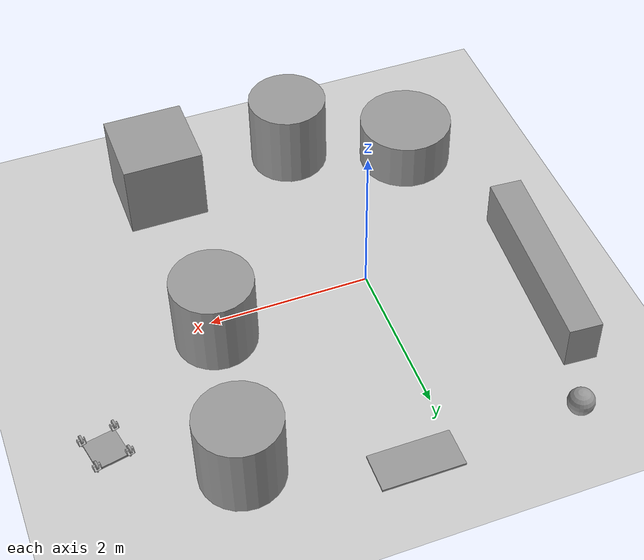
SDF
<sdf version="1.7">
 <world name="default">
  <light name="sun" type="directional">
   <pose>0 0 10 0 -0 0</pose>
   <diffuse>0.8 0.8 0.8 1</diffuse>
   <specular>0.2 0.2 0.2 1</specular>
   <attenuation>
    <range>1000</range>
    <constant>0.9</constant>
    <linear>0.01</linear>
    <quadratic>0.001</quadratic>
   </attenuation>
   <direction>-0.5 0.1 -0.9</direction>
   <spot><inner_angle>0</inner_angle><outer_angle>0</outer_angle><falloff>0</falloff></spot>
  </light>
  <model name="ground_plane">
   <static>1</static>
   <link name="link">
    <collision name="collision">
     <geometry><plane><normal>0 0 1</normal><size>100 100</size></plane></geometry>
     <surface><friction><ode><mu>100</mu><mu2>50</mu2></ode></friction></surface>
    </collision>
    <visual name="visual">
     <cast_shadows>0</cast_shadows>
     <geometry><plane><normal>0 0 1</normal><size>100 100</size></plane></geometry>
     <material>
      <script><uri>file://media/materials/scripts/gazebo.material</uri><name>Gazebo/Grey</name></script>
     </material>
    </visual>
   </link>
  </model>
  <gravity>0 0 -9.8</gravity>
  <magnetic_field>6e-06 2.3e-05 -4.2e-05</magnetic_field>
  <atmosphere type="adiabatic"/>
  <physics type="ode">
   <max_step_size>0.001</max_step_size>
   <real_time_factor>1</real_time_factor>
   <real_time_update_rate>1000</real_time_update_rate>
  </physics>
  <scene><ambient>0.4 0.4 0.4 1</ambient><background>0.7 0.7 0.7 1</background><shadows>1</shadows></scene>
  <spherical_coordinates>
   <surface_model>EARTH_WGS84</surface_model>
   <latitude_deg>0</latitude_deg>
   <longitude_deg>0</longitude_deg>
   <elevation>0</elevation>
   <heading_deg>0</heading_deg>
  </spherical_coordinates>
  <model name="test_rover_fourwheel_gazebo">
   <link name="base_footprint">
    <inertial>
     <pose>0.082134 -0.230131 0.072818 0 -0 0</pose>
     <mass>100.059</mass>
     <inertia>
      <ixx>3.01156</ixx>
      <ixy>0.999999</ixy>
      <ixz>-1.00159</ixz>
      <iyy>3.00764</iyy>
      <iyz>-0.998406</iyz>
      <izz>5.01865</izz>
     </inertia>
    </inertial>
    <collision name="base_footprint_fixed_joint_lump__chassis_link_collision">
     <pose>0.082134 -0.230131 0.02 0 -0 3.14</pose>
     <geometry>
      <mesh>
       <scale>1 1 1</scale>
       <uri>/home/rokata/catkin_ws_new/src/test_controllers/ros_controllers-noetic-devel/swerve_steering_controller/test/meshes/wheel.STL</uri>
      </mesh>
     </geometry>
    </collision>
    <collision name="base_footprint_fixed_joint_lump__camera_link_collision_1">
     <pose>0.082372 -0.080131 0.07 0 -0 1.57</pose>
     <geometry><box><size>0.01 0.01 0.01</size></box></geometry>
    </collision>
    <visual name="base_footprint_fixed_joint_lump__chassis_link_visual">
     <pose>0.082134 -0.230131 0.072818 0 -0 3.14</pose>
     <geometry><box><size>0.4 0.4 0.03</size></box></geometry>
     <material>
      <script><name>Gazebo/Grey</name><uri>file://media/materials/scripts/gazebo.material</uri></script>
     </material>
    </visual>
    <visual name="base_footprint_fixed_joint_lump__camera_link_visual_1">
     <pose>0.082372 -0.080131 0.07 0 -0 1.57</pose>
     <geometry><box><size>0.01 0.01 0.01</size></box></geometry>
    </visual>
    <sensor name="camera1" type="camera">
     <update_rate>30</update_rate>
     <camera name="head">
      <horizontal_fov>1.39626</horizontal_fov>
      <image><width>800</width><height>800</height><format>R8G8B8</format></image>
      <clip><near>0.02</near><far>300</far></clip>
      <noise><type>gaussian</type><mean>0</mean><stddev>0.007</stddev></noise>
     </camera>
     <plugin name="camera_controller" filename="libgazebo_ros_camera.so">
      <alwaysOn>1</alwaysOn>
      <updateRate>30.0</updateRate>
      <cameraName>camera1</cameraName>
      <imageTopicName>image_raw</imageTopicName>
      <cameraInfoTopicName>camera_info</cameraInfoTopicName>
      <frameName>camera_link</frameName>
      <hackBaseline>0.07</hackBaseline>
      <distortionK1>0.0</distortionK1>
      <distortionK2>0.0</distortionK2>
      <distortionK3>0.0</distortionK3>
      <distortionT1>0.0</distortionT1>
      <distortionT2>0.0</distortionT2>
      <robotNamespace>/</robotNamespace>
     </plugin>
     <pose>0.082373 -0.080131 0.07 0 -0 1.57</pose>
    </sensor>
   </link>
   <joint name="steer_joint_1" type="revolute">
    <pose relative_to="base_footprint">0.282452 -0.03045 0.1 0 -0 3.14</pose>
    <parent>base_footprint</parent>
    <child>steer_body_1</child>
    <axis>
     <xyz>0 0 1</xyz>
     <limit><lower>-1e+16</lower><upper>1e+16</upper></limit>
     <dynamics><spring_reference>0</spring_reference><spring_stiffness>0</spring_stiffness></dynamics>
    </axis>
   </joint>
   <link name="steer_body_1">
    <pose relative_to="steer_joint_1">0 0 0 0 -0 0</pose>
    <inertial>
     <pose>-0.2 -0.2 -0.087123 0 -0 0</pose>
     <mass>4.12388</mass>
     <inertia>
      <ixx>1.00026</ixx>
      <ixy>1.5851e-20</ixy>
      <ixz>7.5308e-21</ixz>
      <iyy>1.00018</iyy>
      <iyz>4.4695e-20</iyz>
      <izz>1.00015</izz>
     </inertia>
    </inertial>
    <collision name="steer_body_1_collision">
     <geometry>
      <mesh>
       <scale>1 1 1</scale>
       <uri>/home/rokata/catkin_ws_new/src/test_rover_V1/meshes/steer_body_1.STL</uri>
      </mesh>
     </geometry>
    </collision>
    <visual name="steer_body_1_visual">
     <geometry>
      <mesh>
       <scale>1 1 1</scale>
       <uri>/home/rokata/catkin_ws_new/src/test_rover_V1/meshes/steer_body_1.STL</uri>
      </mesh>
     </geometry>
    </visual>
   </link>
   <joint name="wheel_joint_1" type="revolute">
    <pose relative_to="steer_body_1">0 0 -0.127 1.6642 -0 -1.5708</pose>
    <parent>steer_body_1</parent>
    <child>wheel_1</child>
    <axis>
     <xyz>1 0 0</xyz>
     <limit><lower>-1e+16</lower><upper>1e+16</upper></limit>
     <dynamics><spring_reference>0</spring_reference><spring_stiffness>0</spring_stiffness></dynamics>
    </axis>
   </joint>
   <link name="wheel_1">
    <pose relative_to="wheel_joint_1">0 0 0 0 -0 0</pose>
    <inertial>
     <mass>2.19795</mass>
     <inertia>
      <ixx>0.00026531</ixx>
      <ixy>-1.5846e-20</ixy>
      <ixz>-2.0037e-20</ixz>
      <iyy>0.0001433</iyy>
      <iyz>1.3553e-20</iyz>
      <izz>1.00014</izz>
     </inertia>
    </inertial>
    <collision name="wheel_1_collision">
     <geometry>
      <mesh><scale>1 1 1</scale><uri>/home/rokata/catkin_ws_new/src/test_rover_V1/meshes/wheel_1.STL</uri></mesh>
     </geometry>
    </collision>
    <visual name="wheel_1_visual">
     <geometry>
      <mesh><scale>1 1 1</scale><uri>/home/rokata/catkin_ws_new/src/test_rover_V1/meshes/wheel_1.STL</uri></mesh>
     </geometry>
     <material>
      <script><name>Gazebo/Grey</name><uri>file://media/materials/scripts/gazebo.material</uri></script>
     </material>
    </visual>
   </link>
   <joint name="steer_joint_2" type="revolute">
    <pose relative_to="base_footprint">0.281815 -0.430449 0.1 0 -0 3.14</pose>
    <parent>base_footprint</parent>
    <child>steer_body_2</child>
    <axis>
     <xyz>0 0 1</xyz>
     <limit><lower>-1e+16</lower><upper>1e+16</upper></limit>
     <dynamics><spring_reference>0</spring_reference><spring_stiffness>0</spring_stiffness></dynamics>
    </axis>
   </joint>
   <link name="steer_body_2">
    <pose relative_to="steer_joint_2">0 0 0 0 -0 0</pose>
    <inertial>
     <pose>-0.2 0.2 -0.087123 0 -0 0</pose>
     <mass>4.12388</mass>
     <inertia>
      <ixx>1.00026</ixx>
      <ixy>1.5851e-20</ixy>
      <ixz>7.5308e-21</ixz>
      <iyy>1.00018</iyy>
      <iyz>4.4695e-20</iyz>
      <izz>1.00015</izz>
     </inertia>
    </inertial>
    <collision name="steer_body_2_collision">
     <geometry>
      <mesh>
       <scale>1 1 1</scale>
       <uri>/home/rokata/catkin_ws_new/src/test_rover_V1/meshes/steer_body_1.STL</uri>
      </mesh>
     </geometry>
    </collision>
    <visual name="steer_body_2_visual">
     <geometry>
      <mesh>
       <scale>1 1 1</scale>
       <uri>/home/rokata/catkin_ws_new/src/test_rover_V1/meshes/steer_body_1.STL</uri>
      </mesh>
     </geometry>
    </visual>
   </link>
   <joint name="wheel_joint_2" type="revolute">
    <pose relative_to="steer_body_2">0 0 -0.127 1.6642 -0 -1.5708</pose>
    <parent>steer_body_2</parent>
    <child>wheel_2</child>
    <axis>
     <xyz>1 0 0</xyz>
     <limit><lower>-1e+16</lower><upper>1e+16</upper></limit>
     <dynamics><spring_reference>0</spring_reference><spring_stiffness>0</spring_stiffness></dynamics>
    </axis>
   </joint>
   <link name="wheel_2">
    <pose relative_to="wheel_joint_2">0 0 0 0 -0 0</pose>
    <inertial>
     <mass>2.19795</mass>
     <inertia>
      <ixx>0.00026531</ixx>
      <ixy>-1.5846e-20</ixy>
      <ixz>-2.0037e-20</ixz>
      <iyy>0.0001433</iyy>
      <iyz>1.3553e-20</iyz>
      <izz>1.00014</izz>
     </inertia>
    </inertial>
    <collision name="wheel_2_collision">
     <geometry>
      <mesh><scale>1 1 1</scale><uri>/home/rokata/catkin_ws_new/src/test_rover_V1/meshes/wheel_1.STL</uri></mesh>
     </geometry>
    </collision>
    <visual name="wheel_2_visual">
     <geometry>
      <mesh><scale>1 1 1</scale><uri>/home/rokata/catkin_ws_new/src/test_rover_V1/meshes/wheel_1.STL</uri></mesh>
     </geometry>
     <material>
      <script><name>Gazebo/Grey</name><uri>file://media/materials/scripts/gazebo.material</uri></script>
     </material>
    </visual>
   </link>
   <joint name="steer_joint_3" type="revolute">
    <pose relative_to="base_footprint">-0.118185 -0.429812 0.1 0 -0 3.14</pose>
    <parent>base_footprint</parent>
    <child>steer_body_3</child>
    <axis>
     <xyz>0 0 1</xyz>
     <limit><lower>-1e+16</lower><upper>1e+16</upper></limit>
     <dynamics><spring_reference>0</spring_reference><spring_stiffness>0</spring_stiffness></dynamics>
    </axis>
   </joint>
   <link name="steer_body_3">
    <pose relative_to="steer_joint_3">0 0 0 0 -0 0</pose>
    <inertial>
     <pose>0.2 0.2 -0.087123 0 -0 0</pose>
     <mass>4.12388</mass>
     <inertia>
      <ixx>1.00026</ixx>
      <ixy>1.5851e-20</ixy>
      <ixz>7.5308e-21</ixz>
      <iyy>1.00018</iyy>
      <iyz>4.4695e-20</iyz>
      <izz>1.00015</izz>
     </inertia>
    </inertial>
    <collision name="steer_body_3_collision">
     <geometry>
      <mesh>
       <scale>1 1 1</scale>
       <uri>/home/rokata/catkin_ws_new/src/test_rover_V1/meshes/steer_body_1.STL</uri>
      </mesh>
     </geometry>
    </collision>
    <visual name="steer_body_3_visual">
     <geometry>
      <mesh>
       <scale>1 1 1</scale>
       <uri>/home/rokata/catkin_ws_new/src/test_rover_V1/meshes/steer_body_1.STL</uri>
      </mesh>
     </geometry>
    </visual>
   </link>
   <joint name="wheel_joint_3" type="revolute">
    <pose relative_to="steer_body_3">0 0 -0.127 1.6642 -0 -1.5708</pose>
    <parent>steer_body_3</parent>
    <child>wheel_3</child>
    <axis>
     <xyz>1 0 0</xyz>
     <limit><lower>-1e+16</lower><upper>1e+16</upper></limit>
     <dynamics><spring_reference>0</spring_reference><spring_stiffness>0</spring_stiffness></dynamics>
    </axis>
   </joint>
   <link name="wheel_3">
    <pose relative_to="wheel_joint_3">0 0 0 0 -0 0</pose>
    <inertial>
     <mass>2.19795</mass>
     <inertia>
      <ixx>0.00026531</ixx>
      <ixy>-1.5846e-20</ixy>
      <ixz>-2.0037e-20</ixz>
      <iyy>0.0001433</iyy>
      <iyz>1.3553e-20</iyz>
      <izz>1.00014</izz>
     </inertia>
    </inertial>
    <collision name="wheel_3_collision">
     <geometry>
      <mesh><scale>1 1 1</scale><uri>/home/rokata/catkin_ws_new/src/test_rover_V1/meshes/wheel_1.STL</uri></mesh>
     </geometry>
    </collision>
    <visual name="wheel_3_visual">
     <geometry>
      <mesh><scale>1 1 1</scale><uri>/home/rokata/catkin_ws_new/src/test_rover_V1/meshes/wheel_1.STL</uri></mesh>
     </geometry>
     <material>
      <script><name>Gazebo/Grey</name><uri>file://media/materials/scripts/gazebo.material</uri></script>
     </material>
    </visual>
   </link>
   <joint name="steer_joint_4" type="revolute">
    <pose relative_to="base_footprint">-0.117548 -0.029813 0.1 0 -0 3.14</pose>
    <parent>base_footprint</parent>
    <child>steer_body_4</child>
    <axis>
     <xyz>0 0 1</xyz>
     <limit><lower>-1e+16</lower><upper>1e+16</upper></limit>
     <dynamics><spring_reference>0</spring_reference><spring_stiffness>0</spring_stiffness></dynamics>
    </axis>
   </joint>
   <link name="steer_body_4">
    <pose relative_to="steer_joint_4">0 0 0 0 -0 0</pose>
    <inertial>
     <pose>0.2 -0.2 -0.087123 0 -0 0</pose>
     <mass>4.12388</mass>
     <inertia>
      <ixx>1.00026</ixx>
      <ixy>1.5851e-20</ixy>
      <ixz>7.5308e-21</ixz>
      <iyy>1.00018</iyy>
      <iyz>4.4695e-20</iyz>
      <izz>1.00015</izz>
     </inertia>
    </inertial>
    <collision name="steer_body_4_collision">
     <geometry>
      <mesh>
       <scale>1 1 1</scale>
       <uri>/home/rokata/catkin_ws_new/src/test_rover_V1/meshes/steer_body_1.STL</uri>
      </mesh>
     </geometry>
    </collision>
    <visual name="steer_body_4_visual">
     <geometry>
      <mesh>
       <scale>1 1 1</scale>
       <uri>/home/rokata/catkin_ws_new/src/test_rover_V1/meshes/steer_body_1.STL</uri>
      </mesh>
     </geometry>
    </visual>
   </link>
   <joint name="wheel_joint_4" type="revolute">
    <pose relative_to="steer_body_4">0 0 -0.127 1.6642 -0 -1.5708</pose>
    <parent>steer_body_4</parent>
    <child>wheel_4</child>
    <axis>
     <xyz>1 0 0</xyz>
     <limit><lower>-1e+16</lower><upper>1e+16</upper></limit>
     <dynamics><spring_reference>0</spring_reference><spring_stiffness>0</spring_stiffness></dynamics>
    </axis>
   </joint>
   <link name="wheel_4">
    <pose relative_to="wheel_joint_4">0 0 0 0 -0 0</pose>
    <inertial>
     <mass>2.19795</mass>
     <inertia>
      <ixx>0.00026531</ixx>
      <ixy>-1.5846e-20</ixy>
      <ixz>-2.0037e-20</ixz>
      <iyy>0.0001433</iyy>
      <iyz>1.3553e-20</iyz>
      <izz>1.00014</izz>
     </inertia>
    </inertial>
    <collision name="wheel_4_collision">
     <geometry>
      <mesh><scale>1 1 1</scale><uri>/home/rokata/catkin_ws_new/src/test_rover_V1/meshes/wheel_1.STL</uri></mesh>
     </geometry>
    </collision>
    <visual name="wheel_4_visual">
     <geometry>
      <mesh><scale>1 1 1</scale><uri>/home/rokata/catkin_ws_new/src/test_rover_V1/meshes/wheel_1.STL</uri></mesh>
     </geometry>
     <material>
      <script><name>Gazebo/Grey</name><uri>file://media/materials/scripts/gazebo.material</uri></script>
     </material>
    </visual>
   </link>
   <plugin name="gazebo_ros_control" filename="libgazebo_ros_control.so">
    <robotNamespace>/</robotNamespace>
    <robotSimType>gazebo_ros_control/DefaultRobotHWSim</robotSimType>
   </plugin>
   <static>0</static>
   <plugin name="ground_truth" filename="libgazebo_ros_p3d.so">
    <alwaysOn>1</alwaysOn>
    <updateRate>50.0</updateRate>
    <gaussianNoise>0.01</gaussianNoise>
    <bodyName>base_footprint</bodyName>
    <topicName>odomw</topicName>
    <robotNamespace>/</robotNamespace>
   </plugin>
   <pose>3.87714 1.33117 0.1 -3.14159 0 1.76453</pose>
  </model>
  <model name="unit_sphere">
   <pose>-1.53177 2.73701 0.163888 0 -0 0</pose>
   <link name="link">
    <inertial>
     <mass>1</mass>
     <inertia><ixx>0.1</ixx><ixy>0</ixy><ixz>0</ixz><iyy>0.1</iyy><iyz>0</iyz><izz>0.1</izz></inertia>
    </inertial>
    <collision name="collision"><geometry><sphere><radius>0.163888</radius></sphere></geometry></collision>
    <visual name="visual">
     <geometry><sphere><radius>0.163888</radius></sphere></geometry>
     <material>
      <script><name>Gazebo/Grey</name><uri>file://media/materials/scripts/gazebo.material</uri></script>
     </material>
    </visual>
   </link>
  </model>
  <model name="unit_box">
   <pose>0.475502 2.72063 0.014417 -1.2e-05 -0 -0.001341</pose>
   <link name="link">
    <inertial>
     <mass>1</mass>
     <inertia>
      <ixx>0.166667</ixx>
      <ixy>0</ixy>
      <ixz>0</ixz>
      <iyy>0.166667</iyy>
      <iyz>0</iyz>
      <izz>0.166667</izz>
     </inertia>
    </inertial>
    <collision name="collision"><geometry><box><size>1 0.483648 0.0288413</size></box></geometry></collision>
    <visual name="visual">
     <geometry><box><size>1 0.483648 0.0288413</size></box></geometry>
     <material>
      <script><name>Gazebo/Grey</name><uri>file://media/materials/scripts/gazebo.material</uri></script>
     </material>
    </visual>
   </link>
  </model>
  <model name="unit_cylinder">
   <pose>2.00067 0.231326 0.499998 3e-06 -3e-06 0</pose>
   <link name="link">
    <inertial>
     <mass>1</mass>
     <inertia><ixx>0.145833</ixx><ixy>0</ixy><ixz>0</ixz><iyy>0.145833</iyy><iyz>0</iyz><izz>0.125</izz></inertia>
    </inertial>
    <collision name="collision">
     <geometry><cylinder><radius>0.5</radius><length>1</length></cylinder></geometry>
    </collision>
    <visual name="visual">
     <geometry><cylinder><radius>0.5</radius><length>1</length></cylinder></geometry>
     <material>
      <script><name>Gazebo/Grey</name><uri>file://media/materials/scripts/gazebo.material</uri></script>
     </material>
    </visual>
   </link>
  </model>
  <model name="unit_cylinder_0">
   <pose>-1.29686 -1.90037 0.32074 0 -0 0.067701</pose>
   <link name="link">
    <inertial>
     <mass>1</mass>
     <inertia><ixx>0.145833</ixx><ixy>0</ixy><ixz>0</ixz><iyy>0.145833</iyy><iyz>0</iyz><izz>0.125</izz></inertia>
    </inertial>
    <collision name="collision">
     <geometry><cylinder><radius>0.59548</radius><length>0.64148</length></cylinder></geometry>
    </collision>
    <visual name="visual">
     <geometry><cylinder><radius>0.59548</radius><length>0.64148</length></cylinder></geometry>
     <material>
      <script><name>Gazebo/Grey</name><uri>file://media/materials/scripts/gazebo.material</uri></script>
     </material>
    </visual>
   </link>
  </model>
  <model name="unit_box_0">
   <pose>-1.94945 0.85874 0.297121 8.5e-05 -0 -0.064011</pose>
   <link name="link">
    <inertial>
     <mass>1</mass>
     <inertia>
      <ixx>0.166667</ixx>
      <ixy>0</ixy>
      <ixz>0</ixz>
      <iyy>0.166667</iyy>
      <iyz>0</iyz>
      <izz>0.166667</izz>
     </inertia>
    </inertial>
    <collision name="collision"><geometry><box><size>0.412139 2.49565 0.594453</size></box></geometry></collision>
    <visual name="visual">
     <geometry><box><size>0.412139 2.49565 0.594453</size></box></geometry>
     <material>
      <script><name>Gazebo/Grey</name><uri>file://media/materials/scripts/gazebo.material</uri></script>
     </material>
    </visual>
   </link>
  </model>
  <model name="unit_box_1">
   <pose>1.97975 -2.32158 0.499995 -1e-05 -0 -0</pose>
   <link name="link">
    <inertial>
     <mass>1</mass>
     <inertia>
      <ixx>0.166667</ixx>
      <ixy>0</ixy>
      <ixz>0</ixz>
      <iyy>0.166667</iyy>
      <iyz>0</iyz>
      <izz>0.166667</izz>
     </inertia>
    </inertial>
    <collision name="collision"><geometry><box><size>1 1 1</size></box></geometry></collision>
    <visual name="visual">
     <geometry><box><size>1 1 1</size></box></geometry>
     <material>
      <script><name>Gazebo/Grey</name><uri>file://media/materials/scripts/gazebo.material</uri></script>
     </material>
    </visual>
   </link>
  </model>
  <model name="unit_cylinder_1">
   <pose>0.148624 -2.44953 0.499998 3e-06 -3e-06 0</pose>
   <link name="link">
    <inertial>
     <mass>1</mass>
     <inertia><ixx>0.145833</ixx><ixy>0</ixy><ixz>0</ixz><iyy>0.145833</iyy><iyz>0</iyz><izz>0.125</izz></inertia>
    </inertial>
    <collision name="collision">
     <geometry><cylinder><radius>0.5</radius><length>1</length></cylinder></geometry>
    </collision>
    <visual name="visual">
     <geometry><cylinder><radius>0.5</radius><length>1</length></cylinder></geometry>
     <material>
      <script><name>Gazebo/Grey</name><uri>file://media/materials/scripts/gazebo.material</uri></script>
     </material>
    </visual>
   </link>
  </model>
  <model name="unit_cylinder_2">
   <pose>2.31354 2.17961 0.5 0 -0 0.048433</pose>
   <link name="link">
    <inertial>
     <mass>1</mass>
     <inertia><ixx>0.145833</ixx><ixy>0</ixy><ixz>0</ixz><iyy>0.145833</iyy><iyz>0</iyz><izz>0.125</izz></inertia>
    </inertial>
    <collision name="collision">
     <geometry><cylinder><radius>0.5</radius><length>1</length></cylinder></geometry>
    </collision>
    <visual name="visual">
     <geometry><cylinder><radius>0.5</radius><length>1</length></cylinder></geometry>
     <material>
      <script><name>Gazebo/Grey</name><uri>file://media/materials/scripts/gazebo.material</uri></script>
     </material>
    </visual>
   </link>
  </model>
 </world>
</sdf>
